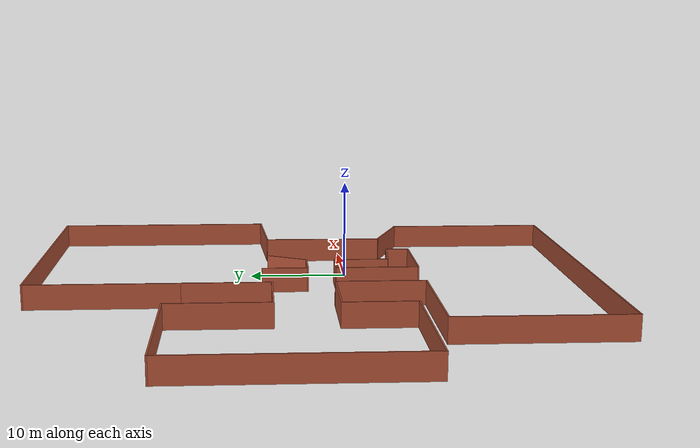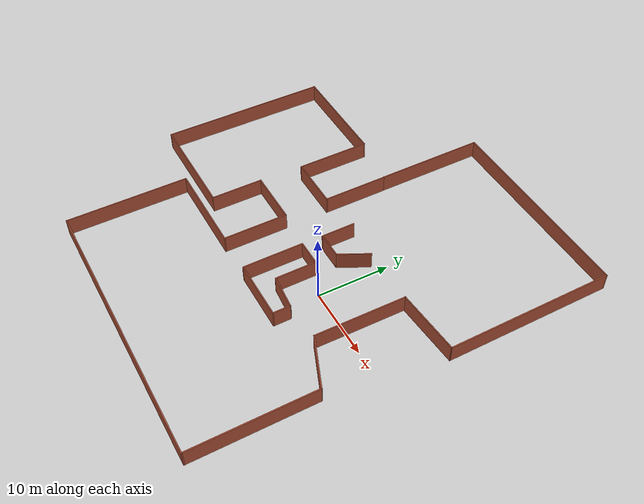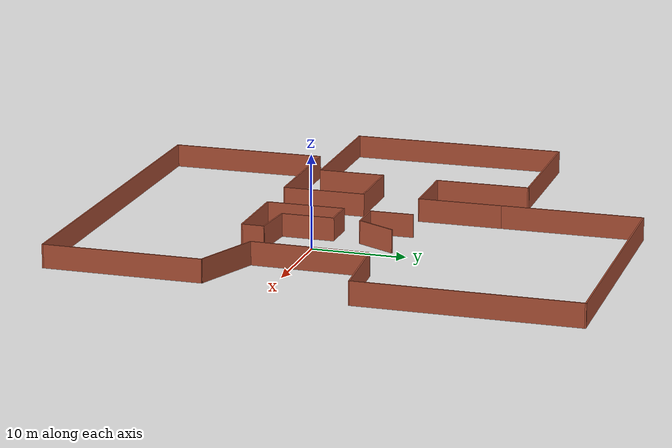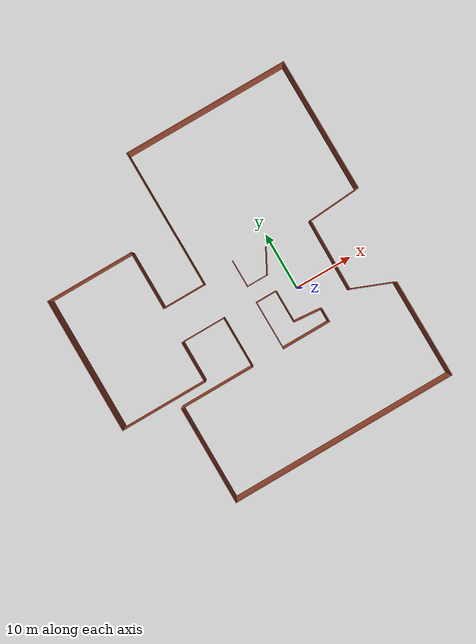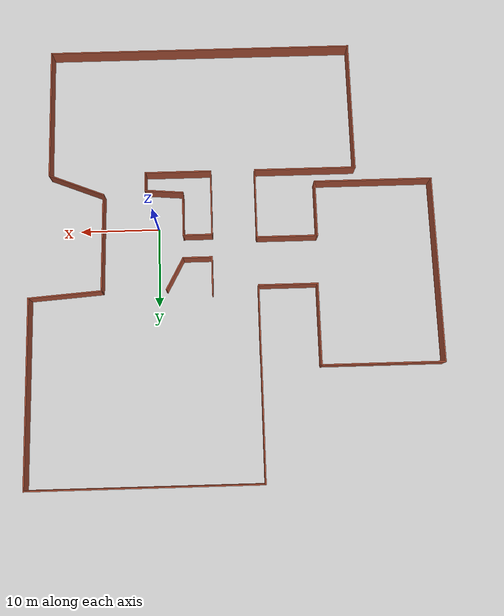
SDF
<?xml version='1.0'?>
<sdf version='1.7'>
  <model name='big_map_model'>
    <pose>-9.41632 4.04669 0 0 -0 0</pose>
    <link name='Wall_21'>
      <collision name='Wall_21_Collision'>
        <geometry>
          <box>
            <size>9 0.15 2.5</size>
          </box>
        </geometry>
        <pose>0 0 1.25 0 -0 0</pose>
      </collision>
      <visual name='Wall_21_Visual'>
        <pose>0 0 1.25 0 -0 0</pose>
        <geometry>
          <box>
            <size>9 0.15 2.5</size>
          </box>
        </geometry>
        <material>
          <script>
            <uri>file://media/materials/scripts/gazebo.material</uri>
            <name>Gazebo/Bricks</name>
          </script>
          <ambient>1 1 1 1</ambient>
        </material>
        <meta>
          <layer>0</layer>
        </meta>
      </visual>
      <pose>-3.06516 8.3671 0 0 -0 -1.5708</pose>
    </link>
    <link name='Wall_22'>
      <collision name='Wall_22_Collision'>
        <geometry>
          <box>
            <size>7.5 0.15 2.5</size>
          </box>
        </geometry>
        <pose>0 0 1.25 0 -0 0</pose>
      </collision>
      <visual name='Wall_22_Visual'>
        <pose>0 0 1.25 0 -0 0</pose>
        <geometry>
          <box>
            <size>7.5 0.15 2.5</size>
          </box>
        </geometry>
        <material>
          <script>
            <uri>file://media/materials/scripts/gazebo.material</uri>
            <name>Gazebo/Bricks</name>
          </script>
          <ambient>1 1 1 1</ambient>
        </material>
        <meta>
          <layer>0</layer>
        </meta>
      </visual>
      <pose>-6.74016 3.9421 0 0 -0 3.14159</pose>
    </link>
    <link name='Wall_23'>
      <collision name='Wall_23_Collision'>
        <geometry>
          <box>
            <size>10.25 0.15 2.5</size>
          </box>
        </geometry>
        <pose>0 0 1.25 0 -0 0</pose>
      </collision>
      <visual name='Wall_23_Visual'>
        <pose>0 0 1.25 0 -0 0</pose>
        <geometry>
          <box>
            <size>10.25 0.15 2.5</size>
          </box>
        </geometry>
        <material>
          <script>
            <uri>file://media/materials/scripts/gazebo.material</uri>
            <name>Gazebo/Bricks</name>
          </script>
          <ambient>1 1 1 1</ambient>
        </material>
        <meta>
          <layer>0</layer>
        </meta>
      </visual>
      <pose>-10.4152 8.9921 0 0 -0 1.5708</pose>
    </link>
    <link name='Wall_24'>
      <collision name='Wall_24_Collision'>
        <geometry>
          <box>
            <size>15.25 0.15 2.5</size>
          </box>
        </geometry>
        <pose>0 0 1.25 0 -0 0</pose>
      </collision>
      <visual name='Wall_24_Visual'>
        <pose>0 0 1.25 0 -0 0</pose>
        <geometry>
          <box>
            <size>15.25 0.15 2.5</size>
          </box>
        </geometry>
        <material>
          <script>
            <uri>file://media/materials/scripts/gazebo.material</uri>
            <name>Gazebo/Bricks</name>
          </script>
          <ambient>1 1 1 1</ambient>
        </material>
        <meta>
          <layer>0</layer>
        </meta>
      </visual>
      <pose>-17.9652 14.0421 0 0 -0 3.14159</pose>
    </link>
    <link name='Wall_25'>
      <collision name='Wall_25_Collision'>
        <geometry>
          <box>
            <size>23.5 0.15 2.5</size>
          </box>
        </geometry>
        <pose>0 0 1.25 0 -0 0</pose>
      </collision>
      <visual name='Wall_25_Visual'>
        <pose>0 0 1.25 0 -0 0</pose>
        <geometry>
          <box>
            <size>23.5 0.15 2.5</size>
          </box>
        </geometry>
        <material>
          <script>
            <uri>file://media/materials/scripts/gazebo.material</uri>
            <name>Gazebo/Bricks</name>
          </script>
          <ambient>1 1 1 1</ambient>
        </material>
        <meta>
          <layer>0</layer>
        </meta>
      </visual>
      <pose>-25.5152 2.3671 0 0 -0 -1.5708</pose>
    </link>
    <link name='Wall_28'>
      <collision name='Wall_28_Collision'>
        <geometry>
          <box>
            <size>15 0.15 2.5</size>
          </box>
        </geometry>
        <pose>0 0 1.25 0 -0 0</pose>
      </collision>
      <visual name='Wall_28_Visual'>
        <pose>0 0 1.25 0 -0 0</pose>
        <geometry>
          <box>
            <size>15 0.15 2.5</size>
          </box>
        </geometry>
        <material>
          <script>
            <uri>file://media/materials/scripts/gazebo.material</uri>
            <name>Gazebo/Bricks</name>
          </script>
          <ambient>1 1 1 1</ambient>
        </material>
        <meta>
          <layer>0</layer>
        </meta>
      </visual>
      <pose>-18.0902 -9.3079 0 0 -0 0</pose>
    </link>
    <link name='Wall_29'>
      <collision name='Wall_29_Collision'>
        <geometry>
          <box>
            <size>7.25 0.15 2.5</size>
          </box>
        </geometry>
        <pose>0 0 1.25 0 -0 0</pose>
      </collision>
      <visual name='Wall_29_Visual'>
        <pose>0 0 1.25 0 -0 0</pose>
        <geometry>
          <box>
            <size>7.25 0.15 2.5</size>
          </box>
        </geometry>
        <material>
          <script>
            <uri>file://media/materials/scripts/gazebo.material</uri>
            <name>Gazebo/Bricks</name>
          </script>
          <ambient>1 1 1 1</ambient>
        </material>
        <meta>
          <layer>0</layer>
        </meta>
      </visual>
      <pose>-10.6652 -5.7579 0 0 -0 1.5708</pose>
    </link>
    <link name='Wall_30'>
      <collision name='Wall_30_Collision'>
        <geometry>
          <box>
            <size>7.75 0.15 2.5</size>
          </box>
        </geometry>
        <pose>0 0 1.25 0 -0 0</pose>
      </collision>
      <visual name='Wall_30_Visual'>
        <pose>0 0 1.25 0 -0 0</pose>
        <geometry>
          <box>
            <size>7.75 0.15 2.5</size>
          </box>
        </geometry>
        <material>
          <script>
            <uri>file://media/materials/scripts/gazebo.material</uri>
            <name>Gazebo/Bricks</name>
          </script>
          <ambient>1 1 1 1</ambient>
        </material>
        <meta>
          <layer>0</layer>
        </meta>
      </visual>
      <pose>-6.86516 -2.2079 0 0 -0 0</pose>
    </link>
    <link name='Wall_31'>
      <collision name='Wall_31_Collision'>
        <geometry>
          <box>
            <size>9 0.15 2.5</size>
          </box>
        </geometry>
        <pose>0 0 1.25 0 -0 0</pose>
      </collision>
      <visual name='Wall_31_Visual'>
        <pose>0 0 1.25 0 -0 0</pose>
        <geometry>
          <box>
            <size>9 0.15 2.5</size>
          </box>
        </geometry>
        <material>
          <script>
            <uri>file://media/materials/scripts/gazebo.material</uri>
            <name>Gazebo/Bricks</name>
          </script>
          <ambient>1 1 1 1</ambient>
        </material>
        <meta>
          <layer>0</layer>
        </meta>
      </visual>
      <pose>-3.06516 -6.6329 0 0 -0 -1.5708</pose>
    </link>
    <link name='Wall_32'>
      <collision name='Wall_32_Collision'>
        <geometry>
          <box>
            <size>13 0.15 2.5</size>
          </box>
        </geometry>
        <pose>0 0 1.25 0 -0 0</pose>
      </collision>
      <visual name='Wall_32_Visual'>
        <pose>0 0 1.25 0 -0 0</pose>
        <geometry>
          <box>
            <size>13 0.15 2.5</size>
          </box>
        </geometry>
        <material>
          <script>
            <uri>file://media/materials/scripts/gazebo.material</uri>
            <name>Gazebo/Bricks</name>
          </script>
          <ambient>1 1 1 1</ambient>
        </material>
        <meta>
          <layer>0</layer>
        </meta>
      </visual>
      <pose>-9.49016 -11.0579 0 0 -0 3.14159</pose>
    </link>
    <link name='Wall_33'>
      <collision name='Wall_33_Collision'>
        <geometry>
          <box>
            <size>17 0.15 2.5</size>
          </box>
        </geometry>
        <pose>0 0 1.25 0 -0 0</pose>
      </collision>
      <visual name='Wall_33_Visual'>
        <pose>0 0 1.25 0 -0 0</pose>
        <geometry>
          <box>
            <size>17 0.15 2.5</size>
          </box>
        </geometry>
        <material>
          <script>
            <uri>file://media/materials/scripts/gazebo.material</uri>
            <name>Gazebo/Bricks</name>
          </script>
          <ambient>1 1 1 1</ambient>
        </material>
        <meta>
          <layer>0</layer>
        </meta>
      </visual>
      <pose>-15.9152 -19.4829 0 0 -0 -1.5708</pose>
    </link>
    <link name='Wall_34'>
      <collision name='Wall_34_Collision'>
        <geometry>
          <box>
            <size>39.25 0.15 2.5</size>
          </box>
        </geometry>
        <pose>0 0 1.25 0 -0 0</pose>
      </collision>
      <visual name='Wall_34_Visual'>
        <pose>0 0 1.25 0 -0 0</pose>
        <geometry>
          <box>
            <size>39.25 0.15 2.5</size>
          </box>
        </geometry>
        <material>
          <script>
            <uri>file://media/materials/scripts/gazebo.material</uri>
            <name>Gazebo/Bricks</name>
          </script>
          <ambient>1 1 1 1</ambient>
        </material>
        <meta>
          <layer>0</layer>
        </meta>
      </visual>
      <pose>3.63484 -27.9079 0 0 -0 0</pose>
    </link>
    <link name='Wall_35'>
      <collision name='Wall_35_Collision'>
        <geometry>
          <box>
            <size>17 0.15 2.5</size>
          </box>
        </geometry>
        <pose>0 0 1.25 0 -0 0</pose>
      </collision>
      <visual name='Wall_35_Visual'>
        <pose>0 0 1.25 0 -0 0</pose>
        <geometry>
          <box>
            <size>17 0.15 2.5</size>
          </box>
        </geometry>
        <material>
          <script>
            <uri>file://media/materials/scripts/gazebo.material</uri>
            <name>Gazebo/Bricks</name>
          </script>
          <ambient>1 1 1 1</ambient>
        </material>
        <meta>
          <layer>0</layer>
        </meta>
      </visual>
      <pose>23.1848 -19.4829 0 0 -0 1.5708</pose>
    </link>
    <link name='Wall_37'>
      <collision name='Wall_37_Collision'>
        <geometry>
          <box>
            <size>8.5 0.15 2.5</size>
          </box>
        </geometry>
        <pose>0 0 1.25 0 -0 0</pose>
      </collision>
      <visual name='Wall_37_Visual'>
        <pose>0 0 1.25 0 -0 0</pose>
        <geometry>
          <box>
            <size>8.5 0.15 2.5</size>
          </box>
        </geometry>
        <material>
          <script>
            <uri>file://media/materials/scripts/gazebo.material</uri>
            <name>Gazebo/Bricks</name>
          </script>
          <ambient>1 1 1 1</ambient>
        </material>
        <meta>
          <layer>0</layer>
        </meta>
      </visual>
      <pose>2.58484 -6.8829 0 0 -0 1.5708</pose>
    </link>
    <link name='Wall_38'>
      <collision name='Wall_38_Collision'>
        <geometry>
          <box>
            <size>3.75 0.15 2.5</size>
          </box>
        </geometry>
        <pose>0 0 1.25 0 -0 0</pose>
      </collision>
      <visual name='Wall_38_Visual'>
        <pose>0 0 1.25 0 -0 0</pose>
        <geometry>
          <box>
            <size>3.75 0.15 2.5</size>
          </box>
        </geometry>
        <material>
          <script>
            <uri>file://media/materials/scripts/gazebo.material</uri>
            <name>Gazebo/Bricks</name>
          </script>
          <ambient>1 1 1 1</ambient>
        </material>
        <meta>
          <layer>0</layer>
        </meta>
      </visual>
      <pose>4.38484 -2.7079 0 0 -0 0</pose>
    </link>
    <link name='Wall_39'>
      <collision name='Wall_39_Collision'>
        <geometry>
          <box>
            <size>5.75 0.15 2.5</size>
          </box>
        </geometry>
        <pose>0 0 1.25 0 -0 0</pose>
      </collision>
      <visual name='Wall_39_Visual'>
        <pose>0 0 1.25 0 -0 0</pose>
        <geometry>
          <box>
            <size>5.75 0.15 2.5</size>
          </box>
        </geometry>
        <material>
          <script>
            <uri>file://media/materials/scripts/gazebo.material</uri>
            <name>Gazebo/Bricks</name>
          </script>
          <ambient>1 1 1 1</ambient>
        </material>
        <meta>
          <layer>0</layer>
        </meta>
      </visual>
      <pose>6.18484 -5.5079 0 0 -0 -1.5708</pose>
    </link>
    <link name='Wall_41'>
      <collision name='Wall_41_Collision'>
        <geometry>
          <box>
            <size>12.5993 0.15 2.5</size>
          </box>
        </geometry>
        <pose>0 0 1.25 0 -0 0</pose>
      </collision>
      <visual name='Wall_41_Visual'>
        <pose>0 0 1.25 0 -0 0</pose>
        <geometry>
          <box>
            <size>12.5993 0.15 2.5</size>
          </box>
        </geometry>
        <material>
          <script>
            <uri>file://media/materials/scripts/gazebo.material</uri>
            <name>Gazebo/Bricks</name>
          </script>
          <ambient>1 1 1 1</ambient>
        </material>
        <meta>
          <layer>0</layer>
        </meta>
      </visual>
      <pose>16.3728 -2.08388 0 0 -0 1.55667</pose>
    </link>
    <link name='Wall_43'>
      <collision name='Wall_43_Collision'>
        <geometry>
          <box>
            <size>4.60828 0.15 2.5</size>
          </box>
        </geometry>
        <pose>0 0 1.25 0 -0 0</pose>
      </collision>
      <visual name='Wall_43_Visual'>
        <pose>0 0 1.25 0 -0 0</pose>
        <geometry>
          <box>
            <size>4.60828 0.15 2.5</size>
          </box>
        </geometry>
        <material>
          <script>
            <uri>file://media/materials/scripts/gazebo.material</uri>
            <name>Gazebo/Bricks</name>
          </script>
          <ambient>1 1 1 1</ambient>
        </material>
        <meta>
          <layer>0</layer>
        </meta>
      </visual>
      <pose>7.31029 2.17402 0 0 -0 -2.06149</pose>
    </link>
    <link name='Wall_44'>
      <collision name='Wall_44_Collision'>
        <geometry>
          <box>
            <size>3.75 0.15 2.5</size>
          </box>
        </geometry>
        <pose>0 0 1.25 0 -0 0</pose>
      </collision>
      <visual name='Wall_44_Visual'>
        <pose>0 0 1.25 0 -0 0</pose>
        <geometry>
          <box>
            <size>3.75 0.15 2.5</size>
          </box>
        </geometry>
        <material>
          <script>
            <uri>file://media/materials/scripts/gazebo.material</uri>
            <name>Gazebo/Bricks</name>
          </script>
          <ambient>1 1 1 1</ambient>
        </material>
        <meta>
          <layer>0</layer>
        </meta>
      </visual>
      <pose>4.45984 0.2079 0 0 -0 3.14159</pose>
    </link>
    <link name='Wall_47'>
      <collision name='Wall_47_Collision'>
        <geometry>
          <box>
            <size>4.75 0.15 2.5</size>
          </box>
        </geometry>
        <pose>0 0 1.25 0 -0 0</pose>
      </collision>
      <visual name='Wall_47_Visual'>
        <pose>0 0 1.25 0 -0 0</pose>
        <geometry>
          <box>
            <size>4.75 0.15 2.5</size>
          </box>
        </geometry>
        <material>
          <script>
            <uri>file://media/materials/scripts/gazebo.material</uri>
            <name>Gazebo/Bricks</name>
          </script>
          <ambient>1 1 1 1</ambient>
        </material>
        <meta>
          <layer>0</layer>
        </meta>
      </visual>
      <pose>2.65984 2.5079 0 0 -0 1.5708</pose>
    </link>
    <link name='Wall_49'>
      <collision name='Wall_49_Collision'>
        <geometry>
          <box>
            <size>23.25 0.15 2.5</size>
          </box>
        </geometry>
        <pose>0 0 1.25 0 -0 0</pose>
      </collision>
      <visual name='Wall_49_Visual'>
        <pose>0 0 1.25 0 -0 0</pose>
        <geometry>
          <box>
            <size>23.25 0.15 2.5</size>
          </box>
        </geometry>
        <material>
          <script>
            <uri>file://media/materials/scripts/gazebo.material</uri>
            <name>Gazebo/Bricks</name>
          </script>
          <ambient>1 1 1 1</ambient>
        </material>
        <meta>
          <layer>0</layer>
        </meta>
      </visual>
      <pose>25.5098 16.3579 0 0 -0 1.5708</pose>
    </link>
    <link name='Wall_50'>
      <collision name='Wall_50_Collision'>
        <geometry>
          <box>
            <size>28.75 0.15 2.5</size>
          </box>
        </geometry>
        <pose>0 0 1.25 0 -0 0</pose>
      </collision>
      <visual name='Wall_50_Visual'>
        <pose>0 0 1.25 0 -0 0</pose>
        <geometry>
          <box>
            <size>28.75 0.15 2.5</size>
          </box>
        </geometry>
        <material>
          <script>
            <uri>file://media/materials/scripts/gazebo.material</uri>
            <name>Gazebo/Bricks</name>
          </script>
          <ambient>1 1 1 1</ambient>
        </material>
        <meta>
          <layer>0</layer>
        </meta>
      </visual>
      <pose>11.2098 27.9079 0 0 -0 3.14159</pose>
    </link>
    <link name='Wall_51'>
      <collision name='Wall_51_Collision'>
        <geometry>
          <box>
            <size>15.25 0.15 2.5</size>
          </box>
        </geometry>
        <pose>0 0 1.25 0 -0 0</pose>
      </collision>
      <visual name='Wall_51_Visual'>
        <pose>0 0 1.25 0 -0 0</pose>
        <geometry>
          <box>
            <size>15.25 0.15 2.5</size>
          </box>
        </geometry>
        <material>
          <script>
            <uri>file://media/materials/scripts/gazebo.material</uri>
            <name>Gazebo/Bricks</name>
          </script>
          <ambient>1 1 1 1</ambient>
        </material>
        <meta>
          <layer>0</layer>
        </meta>
      </visual>
      <pose>-3.09016 20.3579 0 0 -0 -1.5708</pose>
    </link>
    <link name='Wall_53'>
      <collision name='Wall_53_Collision'>
        <geometry>
          <box>
            <size>9.22371 0.15 2.5</size>
          </box>
        </geometry>
        <pose>0 0 1.25 0 -0 0</pose>
      </collision>
      <visual name='Wall_53_Visual'>
        <pose>0 0 1.25 0 -0 0</pose>
        <geometry>
          <box>
            <size>9.22371 0.15 2.5</size>
          </box>
        </geometry>
        <material>
          <script>
            <uri>file://media/materials/scripts/gazebo.material</uri>
            <name>Gazebo/Bricks</name>
          </script>
          <ambient>1 1 1 1</ambient>
        </material>
        <meta>
          <layer>0</layer>
        </meta>
      </visual>
      <pose>20.9853 4.47402 0 0 -0 0.07366</pose>
    </link>
    <link name='Wall_55'>
      <collision name='Wall_55_Collision'>
        <geometry>
          <box>
            <size>8.5 0.15 2.5</size>
          </box>
        </geometry>
        <pose>0 0 1.25 0 -0 0</pose>
      </collision>
      <visual name='Wall_55_Visual'>
        <pose>0 0 1.25 0 -0 0</pose>
        <geometry>
          <box>
            <size>8.5 0.15 2.5</size>
          </box>
        </geometry>
        <material>
          <script>
            <uri>file://media/materials/scripts/gazebo.material</uri>
            <name>Gazebo/Bricks</name>
          </script>
          <ambient>1 1 1 1</ambient>
        </material>
        <meta>
          <layer>0</layer>
        </meta>
      </visual>
      <pose>6.75984 -11.0579 0 0 -0 0</pose>
    </link>
    <link name='Wall_56'>
      <collision name='Wall_56_Collision'>
        <geometry>
          <box>
            <size>2.5 0.15 2.5</size>
          </box>
        </geometry>
        <pose>0 0 1.25 0 -0 0</pose>
      </collision>
      <visual name='Wall_56_Visual'>
        <pose>0 0 1.25 0 -0 0</pose>
        <geometry>
          <box>
            <size>2.5 0.15 2.5</size>
          </box>
        </geometry>
        <material>
          <script>
            <uri>file://media/materials/scripts/gazebo.material</uri>
            <name>Gazebo/Bricks</name>
          </script>
          <ambient>1 1 1 1</ambient>
        </material>
        <meta>
          <layer>0</layer>
        </meta>
      </visual>
      <pose>10.9348 -9.8829 0 0 -0 1.5708</pose>
    </link>
    <link name='Wall_57'>
      <collision name='Wall_57_Collision'>
        <geometry>
          <box>
            <size>4.91681 0.15 2.5</size>
          </box>
        </geometry>
        <pose>0 0 1.25 0 -0 0</pose>
      </collision>
      <visual name='Wall_57_Visual'>
        <pose>0 0 1.25 0 -0 0</pose>
        <geometry>
          <box>
            <size>4.91681 0.15 2.5</size>
          </box>
        </geometry>
        <material>
          <script>
            <uri>file://media/materials/scripts/gazebo.material</uri>
            <name>Gazebo/Bricks</name>
          </script>
          <ambient>1 1 1 1</ambient>
        </material>
        <meta>
          <layer>0</layer>
        </meta>
      </visual>
      <pose>8.55984 -8.5079 0 0 -0 3.05758</pose>
    </link>
    <link name='Wall_59'>
      <collision name='Wall_59_Collision'>
        <geometry>
          <box>
            <size>7.57782 0.15 2.5</size>
          </box>
        </geometry>
        <pose>0 0 1.25 0 -0 0</pose>
      </collision>
      <visual name='Wall_59_Visual'>
        <pose>0 0 1.25 0 -0 0</pose>
        <geometry>
          <box>
            <size>7.57782 0.15 2.5</size>
          </box>
        </geometry>
        <material>
          <script>
            <uri>file://media/materials/scripts/gazebo.material</uri>
            <name>Gazebo/Bricks</name>
          </script>
          <ambient>1 1 1 1</ambient>
        </material>
        <meta>
          <layer>0</layer>
        </meta>
      </visual>
      <pose>19.7348 -9.6829 0 0 -0 -0.379256</pose>
    </link>
    <static>1</static>
  </model>
</sdf>
